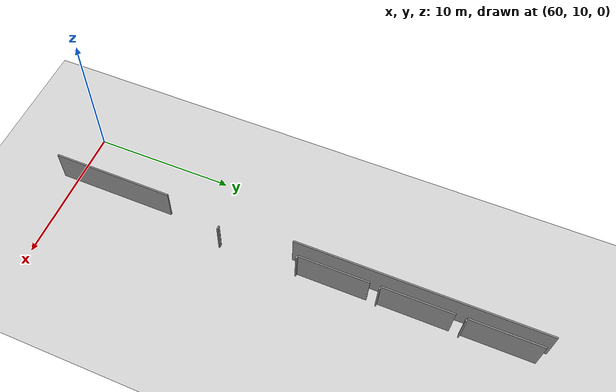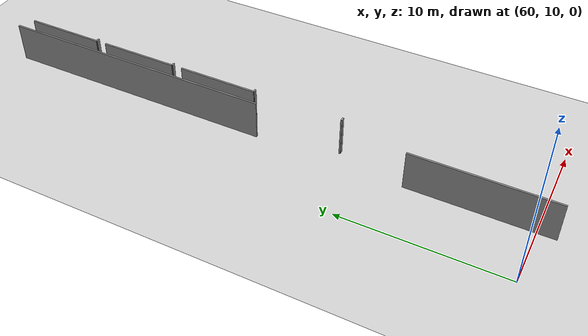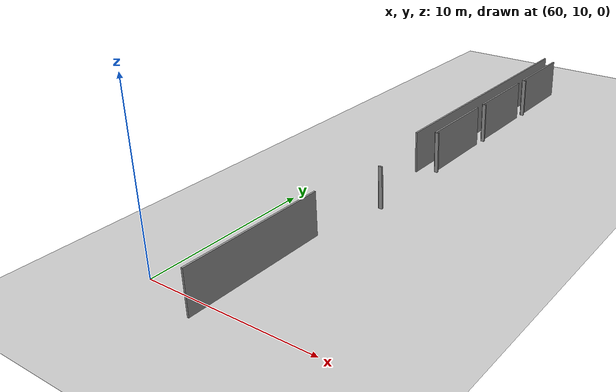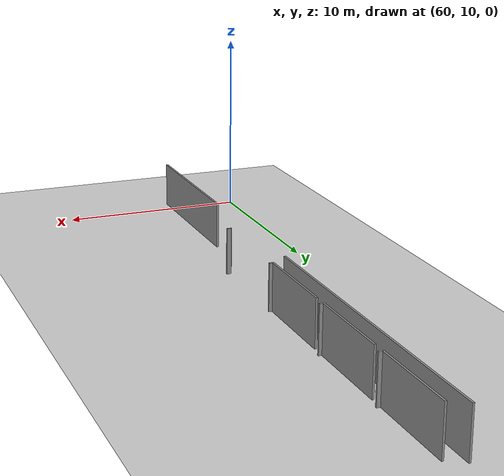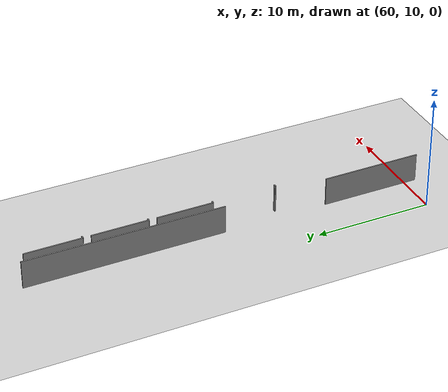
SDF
<sdf version="1.6">
 <world name="default">
  <model name="ground_plane">
   <static>1</static>
   <link name="link">
    <collision name="collision">
     <geometry><plane><normal>0 0 1</normal><size>100 100</size></plane></geometry>
     <surface><friction><ode><mu>100</mu><mu2>50</mu2></ode></friction></surface>
    </collision>
    <visual name="visual">
     <cast_shadows>0</cast_shadows>
     <geometry><plane><normal>0 0 1</normal><size>100 100</size></plane></geometry>
     <material>
      <script><uri>file://media/materials/scripts/gazebo.material</uri><name>Gazebo/Grey</name></script>
     </material>
    </visual>
   </link>
  </model>
  <model name="50015847">
   <static>1</static>
   <link name="Wall_568">
    <collision name="Wall_568_Collision">
     <geometry><box><size>17.3013169268 0.1 2.5</size></box></geometry>
     <pose>8.65065846342 0 1.25 0 0 0</pose>
    </collision>
    <visual name="Wall_568_Visual">
     <pose>8.65065846342 0 1.25 0 0 0</pose>
     <geometry><box><size>17.3013169268 0.1 2.5</size></box></geometry>
     <material>
      <script><uri>file://media/materials/scripts/gazebo.material</uri><name>Gazebo/Grey</name></script>
      <ambient>1 1 1 1</ambient>
     </material>
    </visual>
    <pose>196.061676921 -0.0 0 0 0 -1.57079632679</pose>
   </link>
   <link name="Wall_569">
    <collision name="Wall_569_Collision">
     <geometry><box><size>8.58036304469 0.1 2.5</size></box></geometry>
     <pose>4.29018152235 0 1.25 0 0 0</pose>
    </collision>
    <visual name="Wall_569_Visual">
     <pose>4.29018152235 0 1.25 0 0 0</pose>
     <geometry><box><size>8.58036304469 0.1 2.5</size></box></geometry>
     <material>
      <script><uri>file://media/materials/scripts/gazebo.material</uri><name>Gazebo/Grey</name></script>
      <ambient>1 1 1 1</ambient>
     </material>
    </visual>
    <pose>196.061676921 -26.4267554787 0 0 0 -1.57079632679</pose>
   </link>
   <link name="Wall_1735">
    <collision name="Wall_1735_Collision">
     <geometry><box><size>0.224996186505 0.1 2.5</size></box></geometry>
     <pose>0.112498093253 0 1.25 0 0 0</pose>
    </collision>
    <visual name="Wall_1735_Visual">
     <pose>0.112498093253 0 1.25 0 0 0</pose>
     <geometry><box><size>0.224996186505 0.1 2.5</size></box></geometry>
     <material>
      <script><uri>file://media/materials/scripts/gazebo.material</uri><name>Gazebo/Grey</name></script>
      <ambient>1 1 1 1</ambient>
     </material>
    </visual>
    <pose>196.941068795 -22.2344536533 0 0 0 0.0</pose>
   </link>
   <link name="Wall_1744">
    <collision name="Wall_1744_Collision">
     <geometry><box><size>4.94533990949 0.1 2.5</size></box></geometry>
     <pose>2.47266995475 0 1.25 0 0 0</pose>
    </collision>
    <visual name="Wall_1744_Visual">
     <pose>2.47266995475 0 1.25 0 0 0</pose>
     <geometry><box><size>4.94533990949 0.1 2.5</size></box></geometry>
     <material>
      <script><uri>file://media/materials/scripts/gazebo.material</uri><name>Gazebo/Grey</name></script>
      <ambient>1 1 1 1</ambient>
     </material>
    </visual>
    <pose>196.947933086 -0.496517008186 0 0 0 -1.57079632679</pose>
   </link>
   <link name="Wall_1745">
    <collision name="Wall_1745_Collision">
     <geometry><box><size>0.235165505669 0.1 2.5</size></box></geometry>
     <pose>0.117582752835 0 1.25 0 0 0</pose>
    </collision>
    <visual name="Wall_1745_Visual">
     <pose>0.117582752835 0 1.25 0 0 0</pose>
     <geometry><box><size>0.235165505669 0.1 2.5</size></box></geometry>
     <material>
      <script><uri>file://media/materials/scripts/gazebo.material</uri><name>Gazebo/Grey</name></script>
      <ambient>1 1 1 1</ambient>
     </material>
    </visual>
    <pose>196.947933086 -5.44185691768 0 0 0 0.0</pose>
   </link>
   <link name="Wall_1748">
    <collision name="Wall_1748_Collision">
     <geometry><box><size>4.90059490517 0.1 2.5</size></box></geometry>
     <pose>2.45029745259 0 1.25 0 0 0</pose>
    </collision>
    <visual name="Wall_1748_Visual">
     <pose>2.45029745259 0 1.25 0 0 0</pose>
     <geometry><box><size>4.90059490517 0.1 2.5</size></box></geometry>
     <material>
      <script><uri>file://media/materials/scripts/gazebo.material</uri><name>Gazebo/Grey</name></script>
      <ambient>1 1 1 1</ambient>
     </material>
    </visual>
    <pose>196.95683124 -6.12065897188 0 0 0 -1.57079632679</pose>
   </link>
   <link name="Wall_1749">
    <collision name="Wall_1749_Collision">
     <geometry><box><size>0.219148827986 0.1 2.5</size></box></geometry>
     <pose>0.109574413993 0 1.25 0 0 0</pose>
    </collision>
    <visual name="Wall_1749_Visual">
     <pose>0.109574413993 0 1.25 0 0 0</pose>
     <geometry><box><size>0.219148827986 0.1 2.5</size></box></geometry>
     <material>
      <script><uri>file://media/materials/scripts/gazebo.material</uri><name>Gazebo/Grey</name></script>
      <ambient>1 1 1 1</ambient>
     </material>
    </visual>
    <pose>196.95683124 -11.0212538771 0 0 0 0.0</pose>
   </link>
   <link name="Wall_1752">
    <collision name="Wall_1752_Collision">
     <geometry><box><size>4.93923831799 0.1 2.5</size></box></geometry>
     <pose>2.469619159 0 1.25 0 0 0</pose>
    </collision>
    <visual name="Wall_1752_Visual">
     <pose>2.469619159 0 1.25 0 0 0</pose>
     <geometry><box><size>4.93923831799 0.1 2.5</size></box></geometry>
     <material>
      <script><uri>file://media/materials/scripts/gazebo.material</uri><name>Gazebo/Grey</name></script>
      <ambient>1 1 1 1</ambient>
     </material>
    </visual>
    <pose>196.962932832 -11.7043778919 0 0 0 -1.57079632679</pose>
   </link>
   <link name="Wall_1753">
    <collision name="Wall_1753_Collision">
     <geometry><box><size>0.215589566279 0.1 2.5</size></box></geometry>
     <pose>0.107794783139 0 1.25 0 0 0</pose>
    </collision>
    <visual name="Wall_1753_Visual">
     <pose>0.107794783139 0 1.25 0 0 0</pose>
     <geometry><box><size>0.215589566279 0.1 2.5</size></box></geometry>
     <material>
      <script><uri>file://media/materials/scripts/gazebo.material</uri><name>Gazebo/Grey</name></script>
      <ambient>1 1 1 1</ambient>
     </material>
    </visual>
    <pose>196.962932832 -16.6436162099 0 0 0 0.0</pose>
   </link>
   <link name="Wall_1756">
    <collision name="Wall_1756_Collision">
     <geometry><box><size>0.0218640362028 0.1 2.5</size></box></geometry>
     <pose>0.0109320181014 0 1.25 0 0 0</pose>
    </collision>
    <visual name="Wall_1756_Visual">
     <pose>0.0109320181014 0 1.25 0 0 0</pose>
     <geometry><box><size>0.0218640362028 0.1 2.5</size></box></geometry>
     <material>
      <script><uri>file://media/materials/scripts/gazebo.material</uri><name>Gazebo/Grey</name></script>
      <ambient>1 1 1 1</ambient>
     </material>
    </visual>
    <pose>196.919204759 -22.2344536533 0 0 0 0.0</pose>
   </link>
   <pose>-132.35 43.9162226064 0 0 0 0</pose>
  </model>
 </world>
</sdf>
